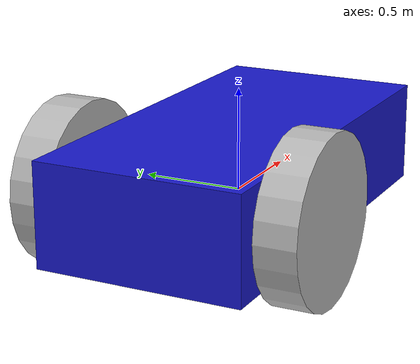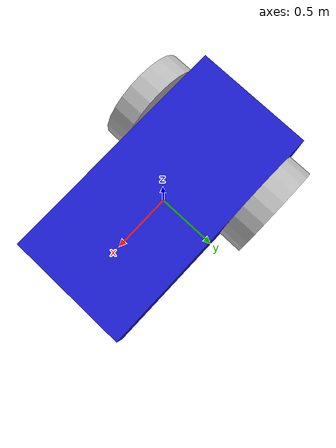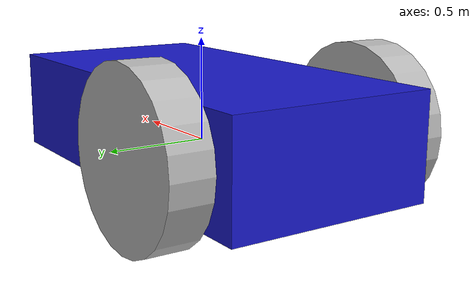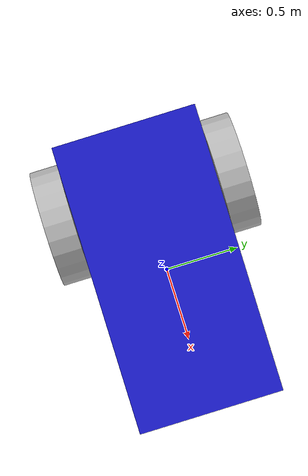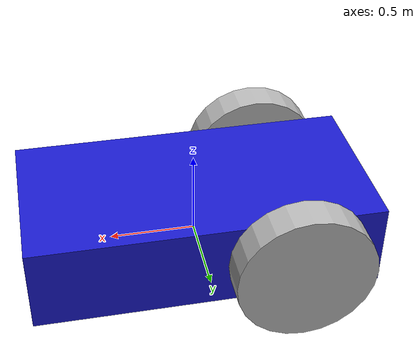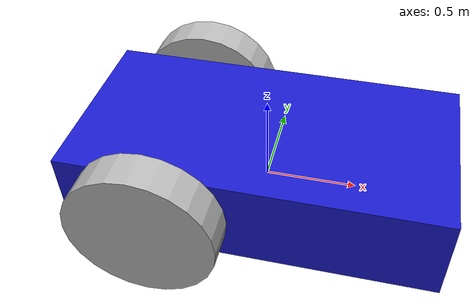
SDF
<?xml version="1.0" ?>
<sdf version="1.8">
  <model name="simple_bot">
    <pose>0 0 0.1 0 0 0</pose>

    <link name="base_link">
      <inertial auto="true">
        <mass>1.0</mass>
      </inertial>

      <collision name="base_collision">
        <geometry><box><size>2.0 1.0 0.5</size></box></geometry>
      </collision>

      <visual name="base_visual">
        <geometry><box><size>2.0 1.0 0.5</size></box></geometry>
          <!-- simple blue material for the robot body -->
          <material>
            <ambient>0.1 0.1 0.8 1</ambient>
            <diffuse>0.1 0.1 0.8 1</diffuse>
          </material>
      </visual>
    </link>

    <!-- Differential drive plugin expects left/right wheel joints; keep it light.
         Wheels are simple cylinders attached by revolute joints. -->
    <link name="left_wheel">
      <pose relative_to="base_link">-0.5 0.6 0 -1.5707 0 0</pose>
      <inertial auto="true">
        <mass>0.2</mass>
      </inertial>
      <collision name="collision">
        <geometry><cylinder><radius>0.4</radius><length>0.2</length></cylinder></geometry>
        <material>
          <ambient>1.0 1.0 1.0 1</ambient>
          <diffuse>1.0 1.0 1.0 1</diffuse>
        </material>
      </collision>
      <visual name="visual">
        <geometry><cylinder><radius>0.4</radius><length>0.2</length></cylinder></geometry>
      </visual>
    </link>

    <link name="right_wheel">
      <pose relative_to="base_link">-0.5 -0.6 0 -1.5707 0 0</pose>
      <inertial auto="true">
        <mass>0.2</mass>
      </inertial>
      <collision name="collision">
        <geometry><cylinder><radius>0.4</radius><length>0.2</length></cylinder></geometry>
        <material>
          <ambient>1.0 1.0 1.0 1</ambient>
          <diffuse>1.0 1.0 1.0 1</diffuse>
        </material>
      </collision>
      <visual name="visual">
        <geometry><cylinder><radius>0.4</radius><length>0.2</length></cylinder></geometry>
      </visual>
    </link>

    <frame name="caster_frame" attached_to="base_link">
      <pose>0.8 0 -0.2  0 0 0</pose>
    </frame>

    <!--caster wheel-->
    <link name="caster">
      <pose relative_to="caster_frame">0 0 0 0 0 0</pose>
      <inertial auto="true">
        <mass>0.1</mass>
      </inertial>
      <collision name="collision">
        <geometry>
          <sphere>
            <radius>0.2</radius>
          </sphere>
        </geometry>
        <material>
          <ambient>1.0 1.0 1.0 1</ambient>
          <diffuse>1.0 1.0 1.0 1</diffuse>
        </material>
      </collision>
      <visual name="visual">
        <geometry>
          <sphere>
            <radius>0.2</radius>
          </sphere>
        </geometry>
      </visual>
    </link>

    <joint name="left_wheel_joint" type="revolute">
      <pose relative_to='left_wheel'>0 0 0 0 0 0</pose>
      <parent>base_link</parent>
      <child>left_wheel</child>
      <axis>
        <xyz>0 1 0</xyz>
        <limit>
          <lower>-1.79769e+308</lower>
          <upper>1.79769e+308</upper>
        </limit>
      </axis>
    </joint>

    <joint name="right_wheel_joint" type="revolute">
      <pose relative_to='right_wheel'>0 0 0 0 0 0</pose>
      <parent>base_link</parent>
      <child>right_wheel</child>
      <axis>
        <xyz>0 1 0</xyz>
        <limit>
          <lower>-1.79769e+308</lower>
          <upper>1.79769e+308</upper>
        </limit>
      </axis>
    </joint>

    <joint name='caster_joint' type='ball'>
      <parent>base_link</parent>
      <child>caster</child>
      <pose relative_to='caster'>0 0 0 0 0 0</pose>
    </joint>

    <!-- Diff drive system -->
    <plugin filename="gz-sim-diff-drive-system" name="gz::sim::systems::DiffDrive">
      <left_joint>left_wheel_joint</left_joint>
      <right_joint>right_wheel_joint</right_joint>
      <wheel_separation>1.2</wheel_separation>
      <wheel_radius>0.4</wheel_radius>
      <topic>cmd_vel</topic>
      <odom_topic>odom</odom_topic>
      <frame_id>odom</frame_id>
      <child_frame_id>base_link</child_frame_id>
      <max_linear_velocity>1.0</max_linear_velocity>
      <max_angular_velocity>2.0</max_angular_velocity>
    </plugin>
  </model>
</sdf>
